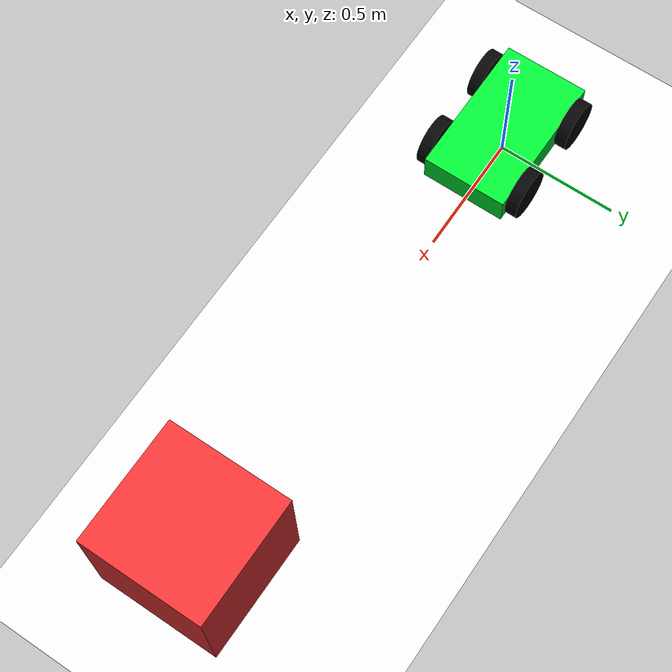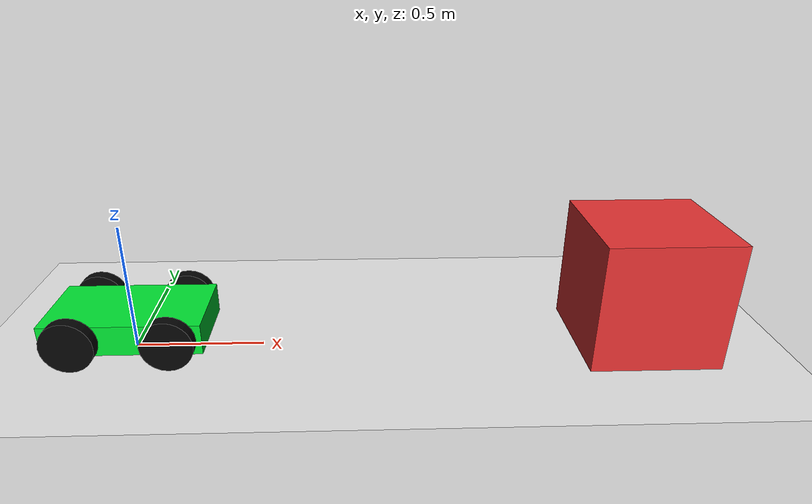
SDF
<?xml version="1.0" ?>
<sdf version="1.6">
    <world name="simple_world">
        <scene>
            <ambient>0.8 0.8 0.8 1</ambient>
            <background>0.9 0.9 0.9 1</background>
            <shadows>false</shadows>
        </scene>
        <physics name="1ms" type="ignored">
            <max_step_size>0.001</max_step_size>
            <real_time_factor>1.0</real_time_factor>
        </physics>
        <plugin filename="ignition-gazebo-physics-system"
        name="ignition::gazebo::systems::Physics"/>
        <plugin filename="ignition-gazebo-user-commands-system"
        name="ignition::gazebo::systems::UserCommands"/>
        <plugin filename="ignition-gazebo-scene-broadcaster-system"
        name="ignition::gazebo::systems::SceneBroadcaster"/>
        <light type="directional" name="sun">
            <cast_shadows>false</cast_shadows>
            <pose>0 0 10 0 0 0</pose>
            <diffuse>1.0 1.0 1.0 1</diffuse>
            <specular>0.3 0.3 0.3 1</specular>
            <direction>-0.5 0.5 -1.0</direction>
        </light>
        <model name="ground_plane">
            <static>true</static>
            <link name="link">
                <collision name="collision">
                    <geometry>
                        <plane>
                            <normal>0 0 1</normal>
                        </plane>
                    </geometry>
                    <surface>
                        <friction>
                            <ode>
                                <mu>1.0</mu>
                                <mu2>0.25</mu2>
                                <slip1>0.0</slip1>
                                <slip2>0.05</slip2>
                            </ode>
                        </friction>
                        <contact>
                            <ode>
                                <kp>1000000.0</kp>
                                <kd>10.0</kd>
                                <min_depth>0.001</min_depth>
                                <max_vel>0.1</max_vel>
                            </ode>
                        </contact>
                    </surface>
                </collision>
                <visual name="visual">
                    <geometry>
                        <plane>
                            <normal>0 0 1</normal>
                            <size>100 100</size>
                        </plane>
                    </geometry>
                    <material>
                        <ambient>0.9 0.9 0.9 1</ambient>
                        <diffuse>0.9 0.9 0.9 1</diffuse>
                        <specular>0.1 0.1 0.1 1</specular>
                    </material>
                </visual>
            </link>
        </model>
        <!-- Caja en el Espacio -->
        <model name="box_obstacle">
            <pose>2 0 0.25 0 0 0</pose>
            <static>true</static>
            <link name="link">
                <collision name="collision">
                <geometry>
                    <box>
                    <size>0.5 0.5 0.5</size>
                    </box>
                </geometry>
                </collision>
                <visual name="visual">
                <geometry>
                    <box>
                    <size>0.5 0.5 0.5</size>
                    </box>
                </geometry>
                <material>
                    <ambient>0.8 0.2 0.2 1</ambient>
                    <diffuse>0.9 0.2 0.2 1</diffuse>
                </material>
                </visual>
            </link>
        </model>
        <!-- Robot diferencial (diff_drive) -->
        <model name="diff_drive_robot">
            <pose>0 0 0.12 0 0 0</pose>
            <!-- Chasis -->
            <link name="chassis">
                <inertial>
                    <mass>2.0</mass>
                    <inertia>
                        <ixx>0.0228</ixx>
                        <ixy>0.0</ixy>
                        <ixz>0.0</ixz>
                        <iyy>0.0624</iyy>
                        <iyz>0.0</iyz>
                        <izz>0.0804</izz>
                    </inertia>
                </inertial>
                <collision name="col">
                    <geometry>
                        <box>
                            <size>0.6 0.35 0.12</size>
                        </box>
                    </geometry>
                </collision>
                <visual name="vis">
                    <geometry>
                        <box>
                            <size>0.6 0.35 0.12</size>
                        </box>
                    </geometry>
                    <material>
                        <ambient>0.0 0.7 0.2 1</ambient>
                        <diffuse>0.0 0.9 0.2 1</diffuse>
                        <specular>0.2 0.2 0.2 1</specular>
                    </material>
                </visual>
            </link>
            <!-- Rueda delantera izquierda -->
            <link name="left_front_wheel">
                <pose>0.18 0.20 0 -1.5707 0 0</pose>
                <inertial>
                    <mass>0.2</mass>
                    <inertia>
                        <ixx>0.00054</ixx>
                        <ixy>0.0</ixy>
                        <ixz>0.0</ixz>
                        <iyy>0.00054</iyy>
                        <iyz>0.0</iyz>
                        <izz>0.00100</izz>
                    </inertia>
                </inertial>
                <collision name="col">
                    <geometry>
                        <cylinder>
                            <radius>0.1</radius>
                            <length>0.05</length>
                        </cylinder>
                    </geometry>
                    <surface>
                        <friction>
                            <ode>
                                <mu>1.0</mu>
                                <mu2>0.25</mu2>
                                <slip1>0.0</slip1>
                                <slip2>0.05</slip2>
                            </ode>
                        </friction>
                        <contact>
                            <ode>
                                <kp>1000000.0</kp>
                                <kd>10.0</kd>
                                <min_depth>0.001</min_depth>
                                <max_vel>0.1</max_vel>
                            </ode>
                        </contact>
                    </surface>
                </collision>
                <visual name="vis">
                    <geometry>
                        <cylinder>
                            <radius>0.1</radius>
                            <length>0.05</length>
                        </cylinder>
                    </geometry>
                    <material>
                        <ambient>0.05 0.05 0.05 1</ambient>
                        <diffuse>0.02 0.02 0.02 1</diffuse>
                        <specular>0.4 0.4 0.4 1</specular>
                    </material>
                </visual>
            </link>
            <!-- Rueda trasera izquierda -->
            <link name="left_rear_wheel">
                <pose>-0.18 0.20 0 -1.5707 0 0</pose>
                <inertial>
                    <mass>0.2</mass>
                    <inertia>
                        <ixx>0.00054</ixx>
                        <ixy>0.0</ixy>
                        <ixz>0.0</ixz>
                        <iyy>0.00054</iyy>
                        <iyz>0.0</iyz>
                        <izz>0.00100</izz>
                    </inertia>
                </inertial>
                <collision name="col">
                    <geometry>
                        <cylinder>
                            <radius>0.1</radius>
                            <length>0.05</length>
                        </cylinder>
                    </geometry>
                    <surface>
                        <friction>
                            <ode>
                                <mu>1.0</mu>
                                <mu2>0.25</mu2>
                                <slip1>0.0</slip1>
                                <slip2>0.05</slip2>
                            </ode>
                        </friction>
                        <contact>
                            <ode>
                                <kp>1000000.0</kp>
                                <kd>10.0</kd>
                                <min_depth>0.001</min_depth>
                                <max_vel>0.1</max_vel>
                            </ode>
                        </contact>
                    </surface>
                </collision>
                <visual name="vis">
                    <geometry>
                        <cylinder>
                            <radius>0.1</radius>
                            <length>0.05</length>
                        </cylinder>
                    </geometry>
                    <material>
                        <ambient>0.05 0.05 0.05 1</ambient>
                        <diffuse>0.02 0.02 0.02 1</diffuse>
                        <specular>0.4 0.4 0.4 1</specular>
                    </material>
                </visual>
            </link>
            <!-- Rueda delantera derecha -->
            <link name="right_front_wheel">
                <pose>0.18 -0.20 0 -1.5707 0 0</pose>
                <inertial>
                    <mass>0.2</mass>
                    <inertia>
                        <ixx>0.00054</ixx>
                        <ixy>0.0</ixy>
                        <ixz>0.0</ixz>
                        <iyy>0.00054</iyy>
                        <iyz>0.0</iyz>
                        <izz>0.00100</izz>
                    </inertia>
                </inertial>
                <collision name="col">
                    <geometry>
                        <cylinder>
                            <radius>0.1</radius>
                            <length>0.05</length>
                        </cylinder>
                    </geometry>
                    <surface>
                        <friction>
                            <ode>
                                <mu>1.0</mu>
                                <mu2>0.25</mu2>
                                <slip1>0.0</slip1>
                                <slip2>0.05</slip2>
                            </ode>
                        </friction>
                        <contact>
                            <ode>
                                <kp>1000000.0</kp>
                                <kd>10.0</kd>
                                <min_depth>0.001</min_depth>
                                <max_vel>0.1</max_vel>
                            </ode>
                        </contact>
                    </surface>
                </collision>
                <visual name="vis">
                    <geometry>
                        <cylinder>
                            <radius>0.1</radius>
                            <length>0.05</length>
                        </cylinder>
                    </geometry>
                    <material>
                        <ambient>0.05 0.05 0.05 1</ambient>
                        <diffuse>0.02 0.02 0.02 1</diffuse>
                        <specular>0.4 0.4 0.4 1</specular>
                    </material>
                </visual>
            </link>
            <!-- Rueda trasera derecha -->
            <link name="right_rear_wheel">
                <pose>-0.18 -0.20 0 -1.5707 0 0</pose>
                <inertial>
                    <mass>0.2</mass>
                    <inertia>
                        <ixx>0.00054</ixx>
                        <ixy>0.0</ixy>
                        <ixz>0.0</ixz>
                        <iyy>0.00054</iyy>
                        <iyz>0.0</iyz>
                        <izz>0.00100</izz>
                    </inertia>
                </inertial>
                <collision name="col">
                    <geometry>
                        <cylinder>
                            <radius>0.1</radius>
                            <length>0.05</length>
                        </cylinder>
                    </geometry>
                    <surface>
                        <friction>
                            <ode>
                                <mu>1.0</mu>
                                <mu2>0.25</mu2>
                                <slip1>0.0</slip1>
                                <slip2>0.05</slip2>
                            </ode>
                        </friction>
                        <contact>
                            <ode>
                                <kp>1000000.0</kp>
                                <kd>10.0</kd>
                                <min_depth>0.001</min_depth>
                                <max_vel>0.1</max_vel>
                            </ode>
                        </contact>
                    </surface>
                </collision>
                <visual name="vis">
                    <geometry>
                        <cylinder>
                            <radius>0.1</radius>
                            <length>0.05</length>
                        </cylinder>
                    </geometry>
                    <material>
                        <ambient>0.05 0.05 0.05 1</ambient>
                        <diffuse>0.02 0.02 0.02 1</diffuse>
                        <specular>0.4 0.4 0.4 1</specular>
                    </material>
                </visual>
            </link>
            <!-- Joints izquierdos -->
            <joint name="left_front_wheel_joint" type="revolute">
                <parent>chassis</parent>
                <child>left_front_wheel</child>
                <axis>
                    <xyz>0 0 1</xyz>
                </axis>
            </joint>
            <joint name="left_rear_wheel_joint" type="revolute">
                <parent>chassis</parent>
                <child>left_rear_wheel</child>
                <axis>
                    <xyz>0 0 1</xyz>
                </axis>
            </joint>
            <!-- Joints derechos -->
            <joint name="right_front_wheel_joint" type="revolute">
                <parent>chassis</parent>
                <child>right_front_wheel</child>
                <axis>
                    <xyz>0 0 1</xyz>
                </axis>
            </joint>
            <joint name="right_rear_wheel_joint" type="revolute">
                <parent>chassis</parent>
                <child>right_rear_wheel</child>
                <axis>
                    <xyz>0 0 1</xyz>
                </axis>
            </joint>
            <!-- Plugin DiffDrive para 4 ruedas -->
            <plugin filename="ignition-gazebo-diff-drive-system" name="ignition::gazebo::systems::DiffDrive">
                <left_joint>left_front_wheel_joint</left_joint>
                <left_joint>left_rear_wheel_joint</left_joint>
                <right_joint>right_front_wheel_joint</right_joint>
                <right_joint>right_rear_wheel_joint</right_joint>
                <wheel_separation>0.40</wheel_separation>
                <wheel_radius>0.1</wheel_radius>
                <topic>cmd_vel</topic>
                <odom_topic>odom</odom_topic>
                <frame_id>odom</frame_id>
                <child_frame_id>base_link</child_frame_id>
            </plugin>
        </model>
    </world>
</sdf>
